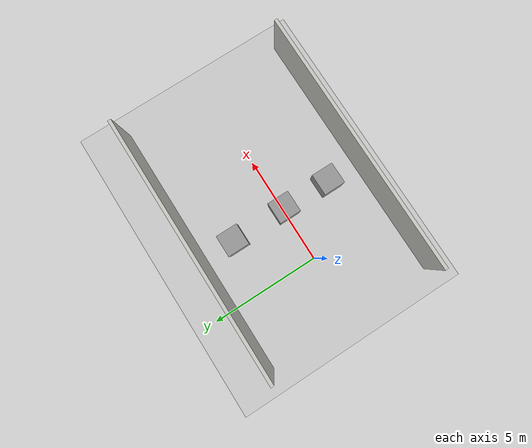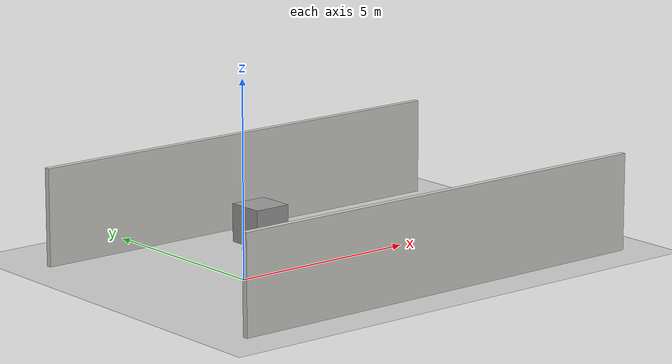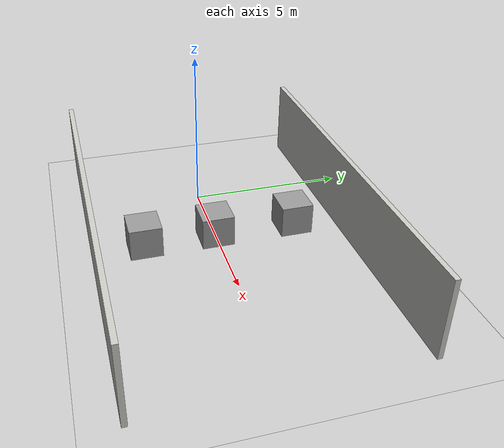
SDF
<sdf version="1.6">
 <world name="default">
  <light name="sun" type="directional">
   <pose>0 0 10 0 -0 0</pose>
   <diffuse>0.8 0.8 0.8 1</diffuse>
   <specular>0.2 0.2 0.2 1</specular>
   <attenuation>
    <range>1000</range>
    <constant>0.9</constant>
    <linear>0.01</linear>
    <quadratic>0.001</quadratic>
   </attenuation>
   <direction>-0.5 0.1 -0.9</direction>
  </light>
  <model name="ground_plane">
   <static>1</static>
   <link name="link">
    <collision name="collision">
     <geometry><plane><normal>0 0 1</normal><size>100 100</size></plane></geometry>
     <surface><friction><ode><mu>100</mu><mu2>50</mu2></ode></friction></surface>
    </collision>
    <visual name="visual">
     <cast_shadows>0</cast_shadows>
     <geometry><plane><normal>0 0 1</normal><size>100 100</size></plane></geometry>
     <material>
      <script><uri>file://media/materials/scripts/gazebo.material</uri><name>Gazebo/Grey</name></script>
     </material>
    </visual>
   </link>
  </model>
  <gravity>0 0 -9.8</gravity>
  <magnetic_field>6e-06 2.3e-05 -4.2e-05</magnetic_field>
  <atmosphere type="adiabatic"/>
  <physics name="default_physics" default="0" type="ode">
   <max_step_size>0.001</max_step_size>
   <real_time_factor>1</real_time_factor>
   <real_time_update_rate>1000</real_time_update_rate>
  </physics>
  <scene><ambient>0.4 0.4 0.4 1</ambient><background>0.7 0.7 0.7 1</background><shadows>1</shadows></scene>
  <audio><device>default</device></audio>
  <spherical_coordinates>
   <surface_model>EARTH_WGS84</surface_model>
   <latitude_deg>0</latitude_deg>
   <longitude_deg>0</longitude_deg>
   <elevation>0</elevation>
   <heading_deg>0</heading_deg>
  </spherical_coordinates>
  <model name="model_corridor_3">
   <pose>3.04443 0.0979 0 0 -0 0</pose>
   <link name="Wall_5">
    <collision name="Wall_5_Collision">
     <geometry><box><size>12 0.15 2.5</size></box></geometry>
     <pose>0 0 1.25 0 -0 0</pose>
    </collision>
    <visual name="Wall_5_Visual">
     <pose>0 0 1.25 0 -0 0</pose>
     <geometry><box><size>12 0.15 2.5</size></box></geometry>
     <material>
      <script><uri>file://media/materials/scripts/gazebo.material</uri><name>Gazebo/CeilingTiled</name></script>
      <ambient>0.760784 0.662745 0.627451 1</ambient>
     </material>
     <meta><layer>0</layer></meta>
    </visual>
    <pose>-0 3.925 0 0 -0 0</pose>
   </link>
   <link name="Wall_7">
    <collision name="Wall_7_Collision">
     <geometry><box><size>12 0.15 2.5</size></box></geometry>
     <pose>0 0 1.25 0 -0 0</pose>
    </collision>
    <visual name="Wall_7_Visual">
     <pose>0 0 1.25 0 -0 0</pose>
     <geometry><box><size>12 0.15 2.5</size></box></geometry>
     <material>
      <script><uri>file://media/materials/scripts/gazebo.material</uri><name>Gazebo/CeilingTiled</name></script>
      <ambient>0.760784 0.662745 0.627451 1</ambient>
     </material>
     <meta><layer>0</layer></meta>
    </visual>
    <pose>-0 -3.925 0 0 -0 3.14159</pose>
   </link>
   <static>1</static>
  </model>
  <model name="unit_box">
   <pose>2.5 -2.27821 0.499995 0 1e-05 0</pose>
   <link name="link">
    <inertial>
     <mass>1</mass>
     <inertia>
      <ixx>0.166667</ixx>
      <ixy>0</ixy>
      <ixz>0</ixz>
      <iyy>0.166667</iyy>
      <iyz>0</iyz>
      <izz>0.166667</izz>
     </inertia>
    </inertial>
    <collision name="collision"><geometry><box><size>1 1 1</size></box></geometry></collision>
    <visual name="visual">
     <geometry><box><size>1 1 1</size></box></geometry>
     <material>
      <script><name>Gazebo/Grey</name><uri>file://media/materials/scripts/gazebo.material</uri></script>
     </material>
    </visual>
   </link>
  </model>
  <model name="unit_box_0">
   <pose>2.5 -0.045041 0.499995 1e-05 -0 0</pose>
   <link name="link">
    <inertial>
     <mass>1</mass>
     <inertia>
      <ixx>0.166667</ixx>
      <ixy>0</ixy>
      <ixz>0</ixz>
      <iyy>0.166667</iyy>
      <iyz>0</iyz>
      <izz>0.166667</izz>
     </inertia>
    </inertial>
    <collision name="collision"><geometry><box><size>1 1 1</size></box></geometry></collision>
    <visual name="visual">
     <geometry><box><size>1 1 1</size></box></geometry>
     <material>
      <script><name>Gazebo/Grey</name><uri>file://media/materials/scripts/gazebo.material</uri></script>
     </material>
    </visual>
   </link>
  </model>
  <model name="unit_box_1">
   <pose>2.49999 2.50842 0.499995 0 -1e-05 0</pose>
   <link name="link">
    <inertial>
     <mass>1</mass>
     <inertia>
      <ixx>0.166667</ixx>
      <ixy>0</ixy>
      <ixz>0</ixz>
      <iyy>0.166667</iyy>
      <iyz>0</iyz>
      <izz>0.166667</izz>
     </inertia>
    </inertial>
    <collision name="collision"><geometry><box><size>1 1 1</size></box></geometry></collision>
    <visual name="visual">
     <geometry><box><size>1 1 1</size></box></geometry>
     <material>
      <script><name>Gazebo/Grey</name><uri>file://media/materials/scripts/gazebo.material</uri></script>
     </material>
    </visual>
   </link>
  </model>
 </world>
</sdf>
